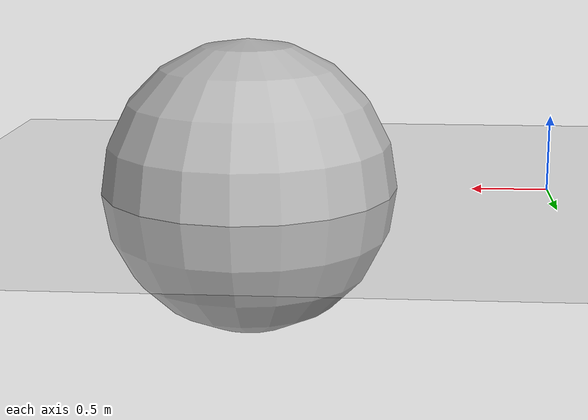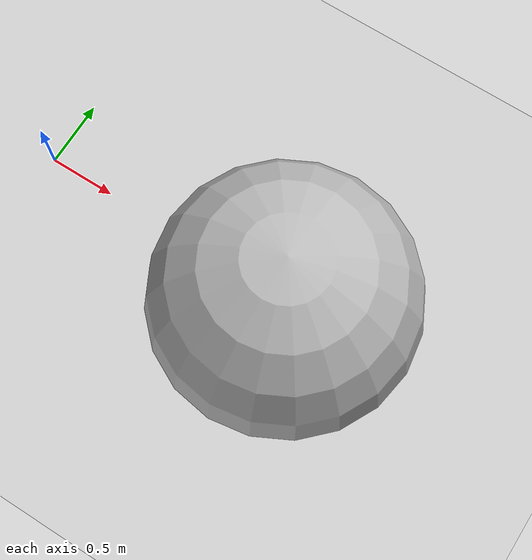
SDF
<?xml version="1.0" ?>
<sdf version="1.4">
  <world name="default">
    <include>
      <uri>model://ground_plane</uri>
    </include>
    <include>
      <uri>model://sun</uri>
    </include>
    <model name="sphere">
      <pose>2 0 0 0 0 0</pose>
      <link name="body">
        <inertial>
          <inertia>
            <ixx>1</ixx>
            <ixy>0</ixy>
            <ixz>0</ixz>
            <iyy>1</iyy>
            <iyz>0</iyz>
            <izz>1</izz>
          </inertia>
          <mass>1.0</mass>
        </inertial>
        <collision name="geom">
          <geometry>
            <sphere>
              <radius>1</radius>
            </sphere>
          </geometry>
        </collision>
        <visual name="visual">
          <geometry>
            <sphere>
              <radius>1</radius>
            </sphere>
          </geometry>
          <material>
            <script>Gazebo/WoodPallet</script>
          </material>
        </visual>
      </link>
      <static>true</static>
    </model>
    <model name="camera_model">
      <pose>0 0 0 0 0 0</pose>
      <link name="my_link">
        <inertial>
          <inertia>
            <ixx>1</ixx>
            <ixy>0</ixy>
            <ixz>0</ixz>
            <iyy>1</iyy>
            <iyz>0</iyz>
            <izz>1</izz>
          </inertia>
          <mass>1.0</mass>
        </inertial>
        <collision name="collision">
          <geometry>
            <box>
              <size>1 1 1</size>
            </box>
          </geometry>
        </collision>
        <sensor name="camera" type="depth">
          <camera>
            <horizontal_fov>1.04719755</horizontal_fov>
            <image>
              <width>640</width>
              <height>480</height>
              <format>R8G8B8</format>
            </image>
            <clip near=".1" far="20" />
            <save enabled="true" path="/tmp/camera" />
          </camera>
          <plugin filename="libDepthCameraPlugin.so" name="depth_camera_plugin" />
          <always_on>true</always_on>
          <update_rate>10</update_rate>
        </sensor>
      </link>
      <static>true</static>
    </model>
  </world>
</sdf>
